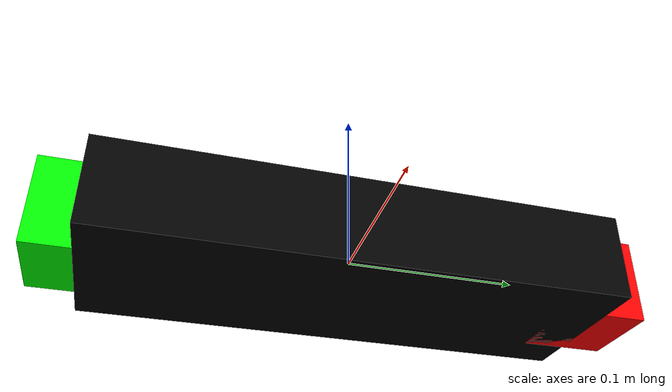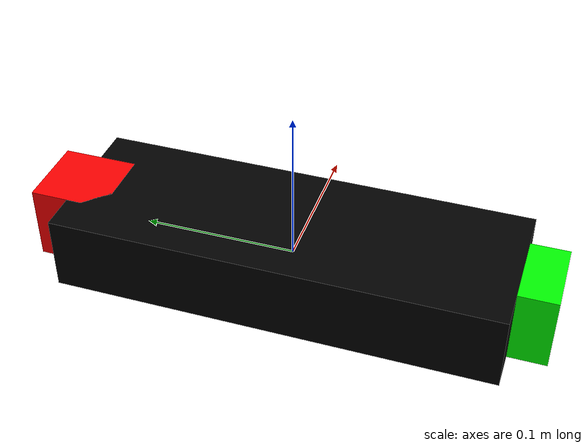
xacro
<?xml version="1.0"?>
<robot name="stereo_camera" xmlns:xacro="http://www.ros.org/wiki/xacro">

    <!-- Camera parameters -->
    <xacro:arg name="baseline" default="0.290"/>
    <xacro:arg name="focal_length" default="19.71"/>
    <xacro:arg name="field_of_view" default="25.5"/>

    <!-- Base link -->
    <link name="stereo_camera_base">
        <visual>
            <geometry>
                <box size="0.1 $(arg baseline) 0.05"/>
            </geometry>
            <material name="black">
                <color rgba="0 0 0 1"/>
            </material>
        </visual>
        <collision>
            <geometry>
                <box size="0.1 $(arg baseline) 0.05"/>
            </geometry>
        </collision>
        <inertial>
            <mass value="0.1"/>
            <inertia ixx="0.001" ixy="0" ixz="0" iyy="0.001" iyz="0" izz="0.001"/>
        </inertial>
    </link>

    <!-- Left camera -->
    <joint name="left_camera_joint" type="fixed">
        <parent link="stereo_camera_base"/>
        <child link="left_camera"/>
        <origin xyz="0 ${$(arg baseline)/2} 0" rpy="0 0 0"/>
    </joint>

    <link name="left_camera">
        <visual>
            <geometry>
                <box size="0.05 0.05 0.05"/>
            </geometry>
            <material name="red">
                <color rgba="1 0 0 1"/>
            </material>
        </visual>
        <collision>
            <geometry>
                <box size="0.05 0.05 0.05"/>
            </geometry>
        </collision>
    </link>

    <!-- Right camera -->
    <joint name="right_camera_joint" type="fixed">
        <parent link="stereo_camera_base"/>
        <child link="right_camera"/>
        <origin xyz="0 -${$(arg baseline)/2} 0" rpy="0 0 0"/>
    </joint>

    <link name="right_camera">
        <visual>
            <geometry>
                <box size="0.05 0.05 0.05"/>
            </geometry>
            <material name="green">
                <color rgba="0 1 0 1"/>
            </material>
        </visual>
        <collision>
            <geometry>
                <box size="0.05 0.05 0.05"/>
            </geometry>
        </collision>
    </link>

    <!-- Gazebo plugins for cameras -->
    <gazebo reference="left_camera">
        <sensor type="camera" name="left_camera">
            <update_rate>30.0</update_rate>
            <camera name="left">
                <horizontal_fov>${$(arg field_of_view) * 3.14159 / 180.0}</horizontal_fov>
                <image>
                    <width>1280</width>
                    <height>720</height>
                    <format>R8G8B8</format>
                </image>
                <clip>
                    <near>0.02</near>
                    <far>300</far>
                </clip>
                <noise>
                    <type>gaussian</type>
                    <mean>0.0</mean>
                    <stddev>0.007</stddev>
                </noise>
            </camera>
            <plugin name="camera_controller" filename="libgazebo_ros_camera.so">
                <alwaysOn>true</alwaysOn>
                <updateRate>30.0</updateRate>
                <cameraName>stereo/left</cameraName>
                <imageTopicName>image_raw</imageTopicName>
                <cameraInfoTopicName>camera_info</cameraInfoTopicName>
                <frameName>left_camera</frameName>
                <hackBaseline>$(arg baseline)</hackBaseline>
                <focalLength>$(arg focal_length)</focalLength>
            </plugin>
        </sensor>
    </gazebo>

    <gazebo reference="right_camera">
        <sensor type="camera" name="right_camera">
            <update_rate>30.0</update_rate>
            <camera name="right">
                <horizontal_fov>${$(arg field_of_view) * 3.14159 / 180.0}</horizontal_fov>
                <image>
                    <width>1280</width>
                    <height>720</height>
                    <format>R8G8B8</format>
                </image>
                <clip>
                    <near>0.02</near>
                    <far>300</far>
                </clip>
                <noise>
                    <type>gaussian</type>
                    <mean>0.0</mean>
                    <stddev>0.007</stddev>
                </noise>
            </camera>
            <plugin name="camera_controller" filename="libgazebo_ros_camera.so">
                <alwaysOn>true</alwaysOn>
                <updateRate>30.0</updateRate>
                <cameraName>stereo/right</cameraName>
                <imageTopicName>image_raw</imageTopicName>
                <cameraInfoTopicName>camera_info</cameraInfoTopicName>
                <frameName>right_camera</frameName>
                <hackBaseline>$(arg baseline)</hackBaseline>
                <focalLength>$(arg focal_length)</focalLength>
            </plugin>
        </sensor>
    </gazebo>

</robot>
